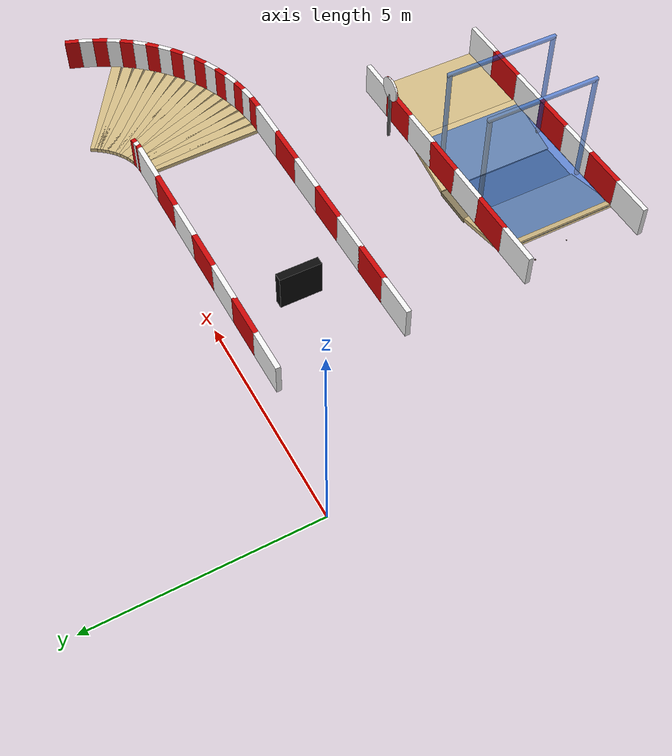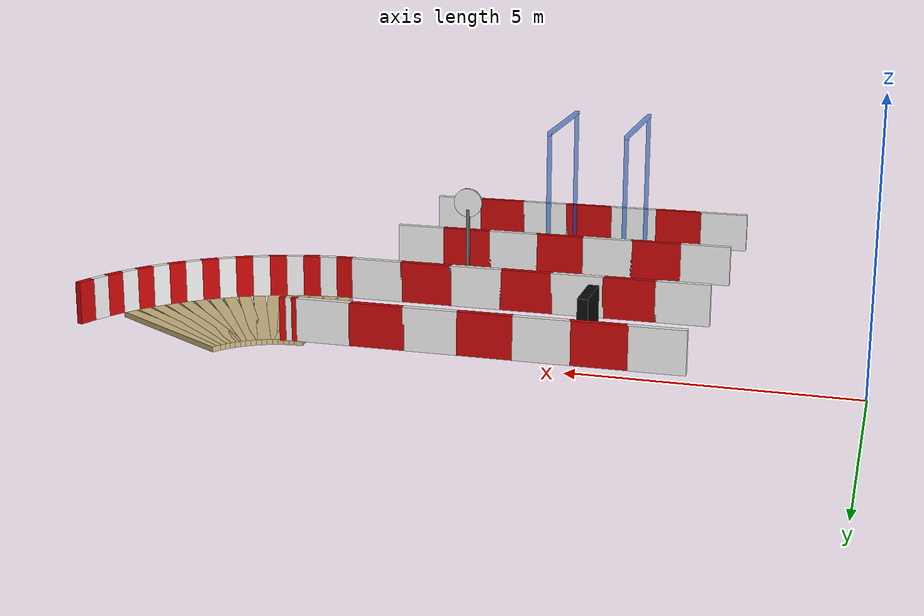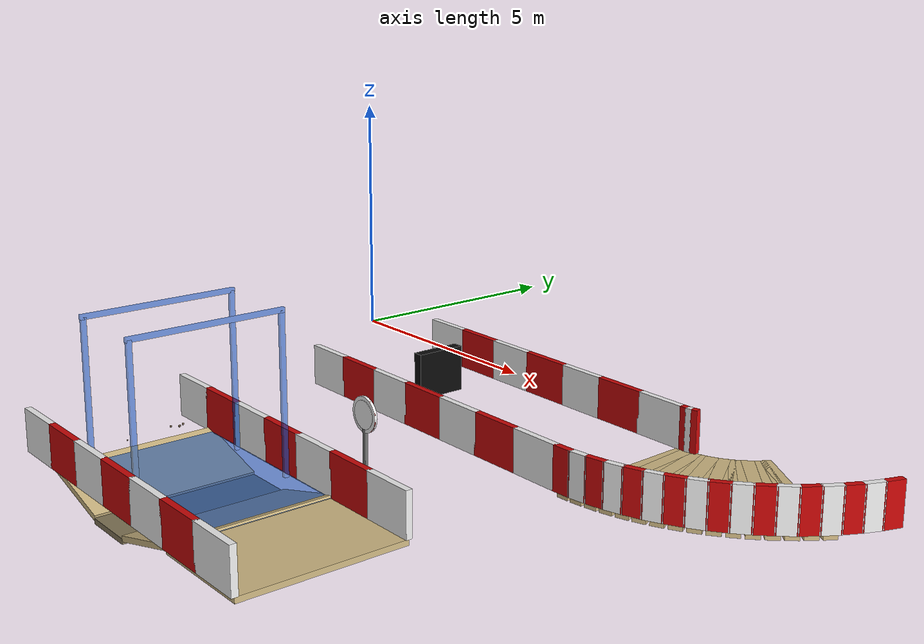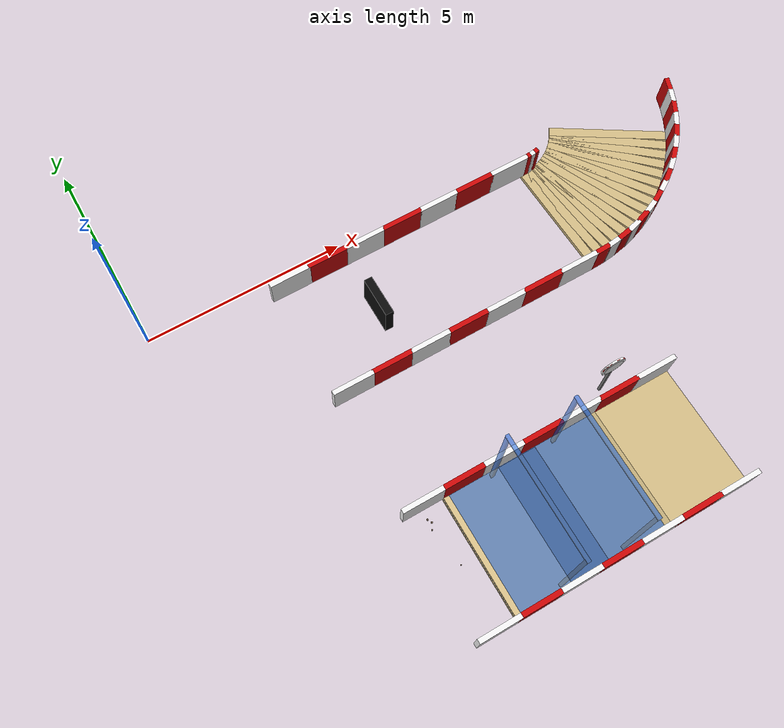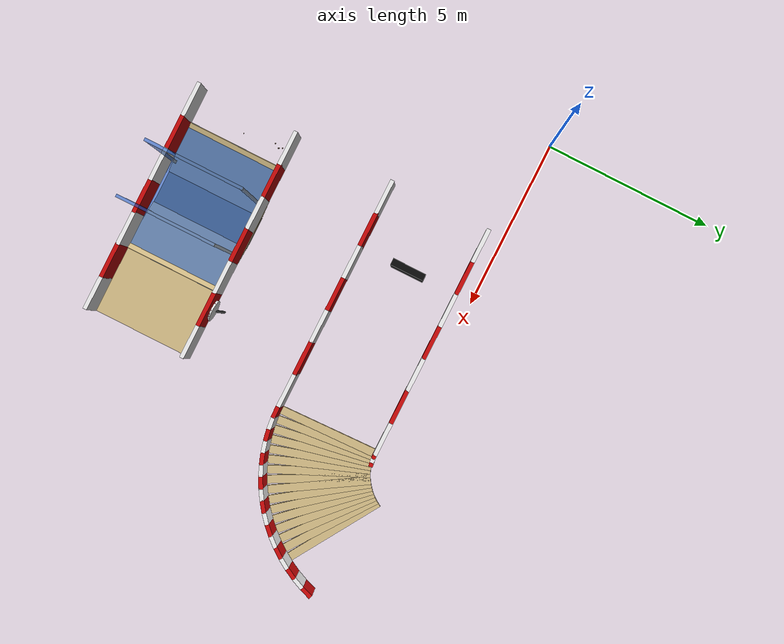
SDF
<sdf version="1.6">
 <world name="evrenos_teknofest_2026">
  <include><uri>model://sun</uri></include>
  <model name="main_course">
   <static>true</static>
   <link name="bottom_start_0">
    <pose>9.0000 -8.0000 -0.0500 0.000000 0.000000 0.000000</pose>
    <collision name="bottom_start_0_collision">
     <geometry><box><size>2.0000 3.0000 0.1000</size></box></geometry>
    </collision>
    <visual name="bottom_start_0_visual">
     <geometry><box><size>2.0000 3.0000 0.1000</size></box></geometry>
     <material><ambient>0.82 0.73 0.52 1</ambient><diffuse>0.82 0.73 0.52 1</diffuse></material>
    </visual>
   </link>
   <link name="water_ramp_down">
    <pose>7.2500 -8.0000 -0.2000 0.000000 -0.260602 0.000000</pose>
    <collision name="water_ramp_down_collision">
     <geometry><box><size>1.5524 3.0000 0.1000</size></box></geometry>
    </collision>
    <visual name="water_ramp_down_visual">
     <geometry><box><size>1.5524 3.0000 0.1000</size></box></geometry>
     <material><ambient>0.82 0.73 0.52 1</ambient><diffuse>0.82 0.73 0.52 1</diffuse></material>
    </visual>
   </link>
   <link name="water_basin_floor">
    <pose>6.0000 -8.0000 -0.4500 0.000000 0.000000 0.000000</pose>
    <collision name="water_basin_floor_collision">
     <geometry><box><size>1.0000 3.0000 0.1000</size></box></geometry>
    </collision>
    <visual name="water_basin_floor_visual">
     <geometry><box><size>1.0000 3.0000 0.1000</size></box></geometry>
     <material><ambient>0.52 0.47 0.35 1</ambient><diffuse>0.52 0.47 0.35 1</diffuse></material>
    </visual>
   </link>
   <link name="water_ramp_up">
    <pose>4.7500 -8.0000 -0.2000 0.000000 0.260602 0.000000</pose>
    <collision name="water_ramp_up_collision">
     <geometry><box><size>1.5524 3.0000 0.1000</size></box></geometry>
    </collision>
    <visual name="water_ramp_up_visual">
     <geometry><box><size>1.5524 3.0000 0.1000</size></box></geometry>
     <material><ambient>0.82 0.73 0.52 1</ambient><diffuse>0.82 0.73 0.52 1</diffuse></material>
    </visual>
   </link>
   <link name="water_surface">
    <pose>6.0000 -8.0000 0.0050 0.000000 0.000000 0.000000</pose>
    <visual name="water_surface_visual">
     <geometry><box><size>4.0000 2.9000 0.0100</size></box></geometry>
     <material><ambient>0.05 0.35 0.85 0.55</ambient><diffuse>0.05 0.35 0.85 0.55</diffuse></material>
    </visual>
   </link>
   <link name="rain_post_5.2_-9.35">
    <pose>5.2000 -9.3500 1.4500 0.000000 0.000000 0.000000</pose>
    <collision name="rain_post_5.2_-9.35_collision">
     <geometry><box><size>0.0800 0.0800 2.9000</size></box></geometry>
    </collision>
    <visual name="rain_post_5.2_-9.35_visual">
     <geometry><box><size>0.0800 0.0800 2.9000</size></box></geometry>
     <material><ambient>0.05 0.35 0.85 0.55</ambient><diffuse>0.05 0.35 0.85 0.55</diffuse></material>
    </visual>
   </link>
   <link name="rain_post_5.2_-6.65">
    <pose>5.2000 -6.6500 1.4500 0.000000 0.000000 0.000000</pose>
    <collision name="rain_post_5.2_-6.65_collision">
     <geometry><box><size>0.0800 0.0800 2.9000</size></box></geometry>
    </collision>
    <visual name="rain_post_5.2_-6.65_visual">
     <geometry><box><size>0.0800 0.0800 2.9000</size></box></geometry>
     <material><ambient>0.05 0.35 0.85 0.55</ambient><diffuse>0.05 0.35 0.85 0.55</diffuse></material>
    </visual>
   </link>
   <link name="rain_post_6.8_-9.35">
    <pose>6.8000 -9.3500 1.4500 0.000000 0.000000 0.000000</pose>
    <collision name="rain_post_6.8_-9.35_collision">
     <geometry><box><size>0.0800 0.0800 2.9000</size></box></geometry>
    </collision>
    <visual name="rain_post_6.8_-9.35_visual">
     <geometry><box><size>0.0800 0.0800 2.9000</size></box></geometry>
     <material><ambient>0.05 0.35 0.85 0.55</ambient><diffuse>0.05 0.35 0.85 0.55</diffuse></material>
    </visual>
   </link>
   <link name="rain_post_6.8_-6.65">
    <pose>6.8000 -6.6500 1.4500 0.000000 0.000000 0.000000</pose>
    <collision name="rain_post_6.8_-6.65_collision">
     <geometry><box><size>0.0800 0.0800 2.9000</size></box></geometry>
    </collision>
    <visual name="rain_post_6.8_-6.65_visual">
     <geometry><box><size>0.0800 0.0800 2.9000</size></box></geometry>
     <material><ambient>0.05 0.35 0.85 0.55</ambient><diffuse>0.05 0.35 0.85 0.55</diffuse></material>
    </visual>
   </link>
   <link name="rain_cross_5.2">
    <pose>5.2000 -8.0000 2.9000 0.000000 0.000000 0.000000</pose>
    <collision name="rain_cross_5.2_collision">
     <geometry><box><size>0.0800 2.8000 0.0800</size></box></geometry>
    </collision>
    <visual name="rain_cross_5.2_visual">
     <geometry><box><size>0.0800 2.8000 0.0800</size></box></geometry>
     <material><ambient>0.05 0.35 0.85 0.55</ambient><diffuse>0.05 0.35 0.85 0.55</diffuse></material>
    </visual>
   </link>
   <link name="rain_cross_6.8">
    <pose>6.8000 -8.0000 2.9000 0.000000 0.000000 0.000000</pose>
    <collision name="rain_cross_6.8_collision">
     <geometry><box><size>0.0800 2.8000 0.0800</size></box></geometry>
    </collision>
    <visual name="rain_cross_6.8_visual">
     <geometry><box><size>0.0800 2.8000 0.0800</size></box></geometry>
     <material><ambient>0.05 0.35 0.85 0.55</ambient><diffuse>0.05 0.35 0.85 0.55</diffuse></material>
    </visual>
   </link>
   <link name="gravel_8">
    <pose>3.5277 -6.8838 0.0124 0 0 0</pose>
    <collision name="gravel_8_collision"><geometry><sphere><radius>0.0225</radius></sphere></geometry></collision>
    <visual name="gravel_8_visual">
     <geometry><sphere><radius>0.0225</radius></sphere></geometry>
     <material><ambient>0.43 0.35 0.27 1</ambient><diffuse>0.43 0.35 0.27 1</diffuse></material>
    </visual>
   </link>
   <link name="gravel_9">
    <pose>3.5988 -7.9647 0.0071 0 0 0</pose>
    <collision name="gravel_9_collision"><geometry><sphere><radius>0.0130</radius></sphere></geometry></collision>
    <visual name="gravel_9_visual">
     <geometry><sphere><radius>0.0130</radius></sphere></geometry>
     <material><ambient>0.43 0.35 0.27 1</ambient><diffuse>0.43 0.35 0.27 1</diffuse></material>
    </visual>
   </link>
   <link name="gravel_35">
    <pose>3.4750 -6.7851 0.0126 0 0 0</pose>
    <collision name="gravel_35_collision">
     <geometry><sphere><radius>0.0230</radius></sphere></geometry>
    </collision>
    <visual name="gravel_35_visual">
     <geometry><sphere><radius>0.0230</radius></sphere></geometry>
     <material><ambient>0.43 0.35 0.27 1</ambient><diffuse>0.43 0.35 0.27 1</diffuse></material>
    </visual>
   </link>
   <link name="gravel_46">
    <pose>3.4498 -7.0224 0.0102 0 0 0</pose>
    <collision name="gravel_46_collision">
     <geometry><sphere><radius>0.0186</radius></sphere></geometry>
    </collision>
    <visual name="gravel_46_visual">
     <geometry><sphere><radius>0.0186</radius></sphere></geometry>
     <material><ambient>0.43 0.35 0.27 1</ambient><diffuse>0.43 0.35 0.27 1</diffuse></material>
    </visual>
   </link>
   <link name="right_turn_road_0">
    <pose>10.0982 -1.9984 -0.0500 0.000000 0.000000 0.032725</pose>
    <collision name="right_turn_road_0_collision">
     <geometry><box><size>0.2356 3.0000 0.1000</size></box></geometry>
    </collision>
    <visual name="right_turn_road_0_visual">
     <geometry><box><size>0.2356 3.0000 0.1000</size></box></geometry>
     <material><ambient>0.82 0.73 0.52 1</ambient><diffuse>0.82 0.73 0.52 1</diffuse></material>
    </visual>
   </link>
   <link name="right_turn_road_1">
    <pose>10.2941 -1.9856 -0.0500 0.000000 0.000000 0.098175</pose>
    <collision name="right_turn_road_1_collision">
     <geometry><box><size>0.2356 3.0000 0.1000</size></box></geometry>
    </collision>
    <visual name="right_turn_road_1_visual">
     <geometry><box><size>0.2356 3.0000 0.1000</size></box></geometry>
     <material><ambient>0.82 0.73 0.52 1</ambient><diffuse>0.82 0.73 0.52 1</diffuse></material>
    </visual>
   </link>
   <link name="right_turn_road_2">
    <pose>10.4887 -1.9599 -0.0500 0.000000 0.000000 0.163625</pose>
    <collision name="right_turn_road_2_collision">
     <geometry><box><size>0.2356 3.0000 0.1000</size></box></geometry>
    </collision>
    <visual name="right_turn_road_2_visual">
     <geometry><box><size>0.2356 3.0000 0.1000</size></box></geometry>
     <material><ambient>0.82 0.73 0.52 1</ambient><diffuse>0.82 0.73 0.52 1</diffuse></material>
    </visual>
   </link>
   <link name="right_turn_road_3">
    <pose>10.6812 -1.9216 -0.0500 0.000000 0.000000 0.229074</pose>
    <collision name="right_turn_road_3_collision">
     <geometry><box><size>0.2356 3.0000 0.1000</size></box></geometry>
    </collision>
    <visual name="right_turn_road_3_visual">
     <geometry><box><size>0.2356 3.0000 0.1000</size></box></geometry>
     <material><ambient>0.82 0.73 0.52 1</ambient><diffuse>0.82 0.73 0.52 1</diffuse></material>
    </visual>
   </link>
   <link name="right_turn_road_4">
    <pose>10.8709 -1.8708 -0.0500 0.000000 0.000000 0.294524</pose>
    <collision name="right_turn_road_4_collision">
     <geometry><box><size>0.2356 3.0000 0.1000</size></box></geometry>
    </collision>
    <visual name="right_turn_road_4_visual">
     <geometry><box><size>0.2356 3.0000 0.1000</size></box></geometry>
     <material><ambient>0.82 0.73 0.52 1</ambient><diffuse>0.82 0.73 0.52 1</diffuse></material>
    </visual>
   </link>
   <link name="right_turn_road_5">
    <pose>11.0568 -1.8077 -0.0500 0.000000 0.000000 0.359974</pose>
    <collision name="right_turn_road_5_collision">
     <geometry><box><size>0.2356 3.0000 0.1000</size></box></geometry>
    </collision>
    <visual name="right_turn_road_5_visual">
     <geometry><box><size>0.2356 3.0000 0.1000</size></box></geometry>
     <material><ambient>0.82 0.73 0.52 1</ambient><diffuse>0.82 0.73 0.52 1</diffuse></material>
    </visual>
   </link>
   <link name="right_turn_road_6">
    <pose>11.2381 -1.7326 -0.0500 0.000000 0.000000 0.425424</pose>
    <collision name="right_turn_road_6_collision">
     <geometry><box><size>0.2356 3.0000 0.1000</size></box></geometry>
    </collision>
    <visual name="right_turn_road_6_visual">
     <geometry><box><size>0.2356 3.0000 0.1000</size></box></geometry>
     <material><ambient>0.82 0.73 0.52 1</ambient><diffuse>0.82 0.73 0.52 1</diffuse></material>
    </visual>
   </link>
   <link name="right_turn_road_7">
    <pose>11.4142 -1.6458 -0.0500 0.000000 0.000000 0.490874</pose>
    <collision name="right_turn_road_7_collision">
     <geometry><box><size>0.2356 3.0000 0.1000</size></box></geometry>
    </collision>
    <visual name="right_turn_road_7_visual">
     <geometry><box><size>0.2356 3.0000 0.1000</size></box></geometry>
     <material><ambient>0.82 0.73 0.52 1</ambient><diffuse>0.82 0.73 0.52 1</diffuse></material>
    </visual>
   </link>
   <link name="right_turn_road_8">
    <pose>11.5842 -1.5476 -0.0500 0.000000 0.000000 0.556324</pose>
    <collision name="right_turn_road_8_collision">
     <geometry><box><size>0.2356 3.0000 0.1000</size></box></geometry>
    </collision>
    <visual name="right_turn_road_8_visual">
     <geometry><box><size>0.2356 3.0000 0.1000</size></box></geometry>
     <material><ambient>0.82 0.73 0.52 1</ambient><diffuse>0.82 0.73 0.52 1</diffuse></material>
    </visual>
   </link>
   <link name="right_turn_road_9">
    <pose>11.7474 -1.4385 -0.0500 0.000000 0.000000 0.621774</pose>
    <collision name="right_turn_road_9_collision">
     <geometry><box><size>0.2356 3.0000 0.1000</size></box></geometry>
    </collision>
    <visual name="right_turn_road_9_visual">
     <geometry><box><size>0.2356 3.0000 0.1000</size></box></geometry>
     <material><ambient>0.82 0.73 0.52 1</ambient><diffuse>0.82 0.73 0.52 1</diffuse></material>
    </visual>
   </link>
   <link name="right_turn_road_10">
    <pose>11.9032 -1.3190 -0.0500 0.000000 0.000000 0.687223</pose>
    <collision name="right_turn_road_10_collision">
     <geometry><box><size>0.2356 3.0000 0.1000</size></box></geometry>
    </collision>
    <visual name="right_turn_road_10_visual">
     <geometry><box><size>0.2356 3.0000 0.1000</size></box></geometry>
     <material><ambient>0.82 0.73 0.52 1</ambient><diffuse>0.82 0.73 0.52 1</diffuse></material>
    </visual>
   </link>
   <link name="right_turn_road_11">
    <pose>12.0508 -1.1896 -0.0500 0.000000 0.000000 0.752673</pose>
    <collision name="right_turn_road_11_collision">
     <geometry><box><size>0.2356 3.0000 0.1000</size></box></geometry>
    </collision>
    <visual name="right_turn_road_11_visual">
     <geometry><box><size>0.2356 3.0000 0.1000</size></box></geometry>
     <material><ambient>0.82 0.73 0.52 1</ambient><diffuse>0.82 0.73 0.52 1</diffuse></material>
    </visual>
   </link>
   <link name="right_turn_road_12">
    <pose>12.1896 -1.0508 -0.0500 0.000000 0.000000 0.818123</pose>
    <collision name="right_turn_road_12_collision">
     <geometry><box><size>0.2356 3.0000 0.1000</size></box></geometry>
    </collision>
    <visual name="right_turn_road_12_visual">
     <geometry><box><size>0.2356 3.0000 0.1000</size></box></geometry>
     <material><ambient>0.82 0.73 0.52 1</ambient><diffuse>0.82 0.73 0.52 1</diffuse></material>
    </visual>
   </link>
   <link name="right_turn_road_13">
    <pose>12.3190 -0.9032 -0.0500 0.000000 0.000000 0.883573</pose>
    <collision name="right_turn_road_13_collision">
     <geometry><box><size>0.2356 3.0000 0.1000</size></box></geometry>
    </collision>
    <visual name="right_turn_road_13_visual">
     <geometry><box><size>0.2356 3.0000 0.1000</size></box></geometry>
     <material><ambient>0.82 0.73 0.52 1</ambient><diffuse>0.82 0.73 0.52 1</diffuse></material>
    </visual>
   </link>
   <link name="right_turn_road_14">
    <pose>12.4385 -0.7474 -0.0500 0.000000 0.000000 0.949023</pose>
    <collision name="right_turn_road_14_collision">
     <geometry><box><size>0.2356 3.0000 0.1000</size></box></geometry>
    </collision>
    <visual name="right_turn_road_14_visual">
     <geometry><box><size>0.2356 3.0000 0.1000</size></box></geometry>
     <material><ambient>0.82 0.73 0.52 1</ambient><diffuse>0.82 0.73 0.52 1</diffuse></material>
    </visual>
   </link>
   <link name="right_turn_road_15">
    <pose>12.5476 -0.5842 -0.0500 0.000000 0.000000 1.014473</pose>
    <collision name="right_turn_road_15_collision">
     <geometry><box><size>0.2356 3.0000 0.1000</size></box></geometry>
    </collision>
    <visual name="right_turn_road_15_visual">
     <geometry><box><size>0.2356 3.0000 0.1000</size></box></geometry>
     <material><ambient>0.82 0.73 0.52 1</ambient><diffuse>0.82 0.73 0.52 1</diffuse></material>
    </visual>
   </link>
   <link name="bottom_bar_-1_13">
    <pose>3.5000 -9.5000 0.4000 0.000000 0.000000 0.000000</pose>
    <collision name="bottom_bar_-1_13_collision">
     <geometry><box><size>1.0300 0.1200 0.8000</size></box></geometry>
    </collision>
    <visual name="bottom_bar_-1_13_visual">
     <geometry><box><size>1.0300 0.1200 0.8000</size></box></geometry>
     <material><ambient>0.95 0.95 0.95 1</ambient><diffuse>0.95 0.95 0.95 1</diffuse></material>
    </visual>
   </link>
   <link name="bottom_bar_-1_14">
    <pose>4.5000 -9.5000 0.4000 0.000000 0.000000 0.000000</pose>
    <collision name="bottom_bar_-1_14_collision">
     <geometry><box><size>1.0300 0.1200 0.8000</size></box></geometry>
    </collision>
    <visual name="bottom_bar_-1_14_visual">
     <geometry><box><size>1.0300 0.1200 0.8000</size></box></geometry>
     <material><ambient>0.8 0.03 0.03 1</ambient><diffuse>0.8 0.03 0.03 1</diffuse></material>
    </visual>
   </link>
   <link name="bottom_bar_-1_15">
    <pose>5.5000 -9.5000 0.4000 0.000000 0.000000 0.000000</pose>
    <collision name="bottom_bar_-1_15_collision">
     <geometry><box><size>1.0300 0.1200 0.8000</size></box></geometry>
    </collision>
    <visual name="bottom_bar_-1_15_visual">
     <geometry><box><size>1.0300 0.1200 0.8000</size></box></geometry>
     <material><ambient>0.95 0.95 0.95 1</ambient><diffuse>0.95 0.95 0.95 1</diffuse></material>
    </visual>
   </link>
   <link name="bottom_bar_-1_16">
    <pose>6.5000 -9.5000 0.4000 0.000000 0.000000 0.000000</pose>
    <collision name="bottom_bar_-1_16_collision">
     <geometry><box><size>1.0300 0.1200 0.8000</size></box></geometry>
    </collision>
    <visual name="bottom_bar_-1_16_visual">
     <geometry><box><size>1.0300 0.1200 0.8000</size></box></geometry>
     <material><ambient>0.8 0.03 0.03 1</ambient><diffuse>0.8 0.03 0.03 1</diffuse></material>
    </visual>
   </link>
   <link name="bottom_bar_-1_17">
    <pose>7.5000 -9.5000 0.4000 0.000000 0.000000 0.000000</pose>
    <collision name="bottom_bar_-1_17_collision">
     <geometry><box><size>1.0300 0.1200 0.8000</size></box></geometry>
    </collision>
    <visual name="bottom_bar_-1_17_visual">
     <geometry><box><size>1.0300 0.1200 0.8000</size></box></geometry>
     <material><ambient>0.95 0.95 0.95 1</ambient><diffuse>0.95 0.95 0.95 1</diffuse></material>
    </visual>
   </link>
   <link name="bottom_bar_-1_18">
    <pose>8.5000 -9.5000 0.4000 0.000000 0.000000 0.000000</pose>
    <collision name="bottom_bar_-1_18_collision">
     <geometry><box><size>1.0300 0.1200 0.8000</size></box></geometry>
    </collision>
    <visual name="bottom_bar_-1_18_visual">
     <geometry><box><size>1.0300 0.1200 0.8000</size></box></geometry>
     <material><ambient>0.8 0.03 0.03 1</ambient><diffuse>0.8 0.03 0.03 1</diffuse></material>
    </visual>
   </link>
   <link name="bottom_bar_-1_19">
    <pose>9.5000 -9.5000 0.4000 0.000000 0.000000 0.000000</pose>
    <collision name="bottom_bar_-1_19_collision">
     <geometry><box><size>1.0300 0.1200 0.8000</size></box></geometry>
    </collision>
    <visual name="bottom_bar_-1_19_visual">
     <geometry><box><size>1.0300 0.1200 0.8000</size></box></geometry>
     <material><ambient>0.95 0.95 0.95 1</ambient><diffuse>0.95 0.95 0.95 1</diffuse></material>
    </visual>
   </link>
   <link name="bottom_bar_1_13">
    <pose>3.5000 -6.5000 0.4000 0.000000 0.000000 0.000000</pose>
    <collision name="bottom_bar_1_13_collision">
     <geometry><box><size>1.0300 0.1200 0.8000</size></box></geometry>
    </collision>
    <visual name="bottom_bar_1_13_visual">
     <geometry><box><size>1.0300 0.1200 0.8000</size></box></geometry>
     <material><ambient>0.95 0.95 0.95 1</ambient><diffuse>0.95 0.95 0.95 1</diffuse></material>
    </visual>
   </link>
   <link name="bottom_bar_1_14">
    <pose>4.5000 -6.5000 0.4000 0.000000 0.000000 0.000000</pose>
    <collision name="bottom_bar_1_14_collision">
     <geometry><box><size>1.0300 0.1200 0.8000</size></box></geometry>
    </collision>
    <visual name="bottom_bar_1_14_visual">
     <geometry><box><size>1.0300 0.1200 0.8000</size></box></geometry>
     <material><ambient>0.8 0.03 0.03 1</ambient><diffuse>0.8 0.03 0.03 1</diffuse></material>
    </visual>
   </link>
   <link name="bottom_bar_1_15">
    <pose>5.5000 -6.5000 0.4000 0.000000 0.000000 0.000000</pose>
    <collision name="bottom_bar_1_15_collision">
     <geometry><box><size>1.0300 0.1200 0.8000</size></box></geometry>
    </collision>
    <visual name="bottom_bar_1_15_visual">
     <geometry><box><size>1.0300 0.1200 0.8000</size></box></geometry>
     <material><ambient>0.95 0.95 0.95 1</ambient><diffuse>0.95 0.95 0.95 1</diffuse></material>
    </visual>
   </link>
   <link name="bottom_bar_1_16">
    <pose>6.5000 -6.5000 0.4000 0.000000 0.000000 0.000000</pose>
    <collision name="bottom_bar_1_16_collision">
     <geometry><box><size>1.0300 0.1200 0.8000</size></box></geometry>
    </collision>
    <visual name="bottom_bar_1_16_visual">
     <geometry><box><size>1.0300 0.1200 0.8000</size></box></geometry>
     <material><ambient>0.8 0.03 0.03 1</ambient><diffuse>0.8 0.03 0.03 1</diffuse></material>
    </visual>
   </link>
   <link name="bottom_bar_1_17">
    <pose>7.5000 -6.5000 0.4000 0.000000 0.000000 0.000000</pose>
    <collision name="bottom_bar_1_17_collision">
     <geometry><box><size>1.0300 0.1200 0.8000</size></box></geometry>
    </collision>
    <visual name="bottom_bar_1_17_visual">
     <geometry><box><size>1.0300 0.1200 0.8000</size></box></geometry>
     <material><ambient>0.95 0.95 0.95 1</ambient><diffuse>0.95 0.95 0.95 1</diffuse></material>
    </visual>
   </link>
   <link name="bottom_bar_1_18">
    <pose>8.5000 -6.5000 0.4000 0.000000 0.000000 0.000000</pose>
    <collision name="bottom_bar_1_18_collision">
     <geometry><box><size>1.0300 0.1200 0.8000</size></box></geometry>
    </collision>
    <visual name="bottom_bar_1_18_visual">
     <geometry><box><size>1.0300 0.1200 0.8000</size></box></geometry>
     <material><ambient>0.8 0.03 0.03 1</ambient><diffuse>0.8 0.03 0.03 1</diffuse></material>
    </visual>
   </link>
   <link name="bottom_bar_1_19">
    <pose>9.5000 -6.5000 0.4000 0.000000 0.000000 0.000000</pose>
    <collision name="bottom_bar_1_19_collision">
     <geometry><box><size>1.0300 0.1200 0.8000</size></box></geometry>
    </collision>
    <visual name="bottom_bar_1_19_visual">
     <geometry><box><size>1.0300 0.1200 0.8000</size></box></geometry>
     <material><ambient>0.95 0.95 0.95 1</ambient><diffuse>0.95 0.95 0.95 1</diffuse></material>
    </visual>
   </link>
   <link name="middle_bar_-1_13">
    <pose>3.5000 -3.5000 0.4000 0.000000 0.000000 0.000000</pose>
    <collision name="middle_bar_-1_13_collision">
     <geometry><box><size>1.0300 0.1200 0.8000</size></box></geometry>
    </collision>
    <visual name="middle_bar_-1_13_visual">
     <geometry><box><size>1.0300 0.1200 0.8000</size></box></geometry>
     <material><ambient>0.95 0.95 0.95 1</ambient><diffuse>0.95 0.95 0.95 1</diffuse></material>
    </visual>
   </link>
   <link name="middle_bar_-1_14">
    <pose>4.5000 -3.5000 0.4000 0.000000 0.000000 0.000000</pose>
    <collision name="middle_bar_-1_14_collision">
     <geometry><box><size>1.0300 0.1200 0.8000</size></box></geometry>
    </collision>
    <visual name="middle_bar_-1_14_visual">
     <geometry><box><size>1.0300 0.1200 0.8000</size></box></geometry>
     <material><ambient>0.8 0.03 0.03 1</ambient><diffuse>0.8 0.03 0.03 1</diffuse></material>
    </visual>
   </link>
   <link name="middle_bar_-1_15">
    <pose>5.5000 -3.5000 0.4000 0.000000 0.000000 0.000000</pose>
    <collision name="middle_bar_-1_15_collision">
     <geometry><box><size>1.0300 0.1200 0.8000</size></box></geometry>
    </collision>
    <visual name="middle_bar_-1_15_visual">
     <geometry><box><size>1.0300 0.1200 0.8000</size></box></geometry>
     <material><ambient>0.95 0.95 0.95 1</ambient><diffuse>0.95 0.95 0.95 1</diffuse></material>
    </visual>
   </link>
   <link name="middle_bar_-1_16">
    <pose>6.5000 -3.5000 0.4000 0.000000 0.000000 0.000000</pose>
    <collision name="middle_bar_-1_16_collision">
     <geometry><box><size>1.0300 0.1200 0.8000</size></box></geometry>
    </collision>
    <visual name="middle_bar_-1_16_visual">
     <geometry><box><size>1.0300 0.1200 0.8000</size></box></geometry>
     <material><ambient>0.8 0.03 0.03 1</ambient><diffuse>0.8 0.03 0.03 1</diffuse></material>
    </visual>
   </link>
   <link name="middle_bar_-1_17">
    <pose>7.5000 -3.5000 0.4000 0.000000 0.000000 0.000000</pose>
    <collision name="middle_bar_-1_17_collision">
     <geometry><box><size>1.0300 0.1200 0.8000</size></box></geometry>
    </collision>
    <visual name="middle_bar_-1_17_visual">
     <geometry><box><size>1.0300 0.1200 0.8000</size></box></geometry>
     <material><ambient>0.95 0.95 0.95 1</ambient><diffuse>0.95 0.95 0.95 1</diffuse></material>
    </visual>
   </link>
   <link name="middle_bar_-1_18">
    <pose>8.5000 -3.5000 0.4000 0.000000 0.000000 0.000000</pose>
    <collision name="middle_bar_-1_18_collision">
     <geometry><box><size>1.0300 0.1200 0.8000</size></box></geometry>
    </collision>
    <visual name="middle_bar_-1_18_visual">
     <geometry><box><size>1.0300 0.1200 0.8000</size></box></geometry>
     <material><ambient>0.8 0.03 0.03 1</ambient><diffuse>0.8 0.03 0.03 1</diffuse></material>
    </visual>
   </link>
   <link name="middle_bar_-1_19">
    <pose>9.5000 -3.5000 0.4000 0.000000 0.000000 0.000000</pose>
    <collision name="middle_bar_-1_19_collision">
     <geometry><box><size>1.0300 0.1200 0.8000</size></box></geometry>
    </collision>
    <visual name="middle_bar_-1_19_visual">
     <geometry><box><size>1.0300 0.1200 0.8000</size></box></geometry>
     <material><ambient>0.95 0.95 0.95 1</ambient><diffuse>0.95 0.95 0.95 1</diffuse></material>
    </visual>
   </link>
   <link name="middle_bar_1_13">
    <pose>3.5000 -0.5000 0.4000 0.000000 0.000000 0.000000</pose>
    <collision name="middle_bar_1_13_collision">
     <geometry><box><size>1.0300 0.1200 0.8000</size></box></geometry>
    </collision>
    <visual name="middle_bar_1_13_visual">
     <geometry><box><size>1.0300 0.1200 0.8000</size></box></geometry>
     <material><ambient>0.95 0.95 0.95 1</ambient><diffuse>0.95 0.95 0.95 1</diffuse></material>
    </visual>
   </link>
   <link name="middle_bar_1_14">
    <pose>4.5000 -0.5000 0.4000 0.000000 0.000000 0.000000</pose>
    <collision name="middle_bar_1_14_collision">
     <geometry><box><size>1.0300 0.1200 0.8000</size></box></geometry>
    </collision>
    <visual name="middle_bar_1_14_visual">
     <geometry><box><size>1.0300 0.1200 0.8000</size></box></geometry>
     <material><ambient>0.8 0.03 0.03 1</ambient><diffuse>0.8 0.03 0.03 1</diffuse></material>
    </visual>
   </link>
   <link name="middle_bar_1_15">
    <pose>5.5000 -0.5000 0.4000 0.000000 0.000000 0.000000</pose>
    <collision name="middle_bar_1_15_collision">
     <geometry><box><size>1.0300 0.1200 0.8000</size></box></geometry>
    </collision>
    <visual name="middle_bar_1_15_visual">
     <geometry><box><size>1.0300 0.1200 0.8000</size></box></geometry>
     <material><ambient>0.95 0.95 0.95 1</ambient><diffuse>0.95 0.95 0.95 1</diffuse></material>
    </visual>
   </link>
   <link name="middle_bar_1_16">
    <pose>6.5000 -0.5000 0.4000 0.000000 0.000000 0.000000</pose>
    <collision name="middle_bar_1_16_collision">
     <geometry><box><size>1.0300 0.1200 0.8000</size></box></geometry>
    </collision>
    <visual name="middle_bar_1_16_visual">
     <geometry><box><size>1.0300 0.1200 0.8000</size></box></geometry>
     <material><ambient>0.8 0.03 0.03 1</ambient><diffuse>0.8 0.03 0.03 1</diffuse></material>
    </visual>
   </link>
   <link name="middle_bar_1_17">
    <pose>7.5000 -0.5000 0.4000 0.000000 0.000000 0.000000</pose>
    <collision name="middle_bar_1_17_collision">
     <geometry><box><size>1.0300 0.1200 0.8000</size></box></geometry>
    </collision>
    <visual name="middle_bar_1_17_visual">
     <geometry><box><size>1.0300 0.1200 0.8000</size></box></geometry>
     <material><ambient>0.95 0.95 0.95 1</ambient><diffuse>0.95 0.95 0.95 1</diffuse></material>
    </visual>
   </link>
   <link name="middle_bar_1_18">
    <pose>8.5000 -0.5000 0.4000 0.000000 0.000000 0.000000</pose>
    <collision name="middle_bar_1_18_collision">
     <geometry><box><size>1.0300 0.1200 0.8000</size></box></geometry>
    </collision>
    <visual name="middle_bar_1_18_visual">
     <geometry><box><size>1.0300 0.1200 0.8000</size></box></geometry>
     <material><ambient>0.8 0.03 0.03 1</ambient><diffuse>0.8 0.03 0.03 1</diffuse></material>
    </visual>
   </link>
   <link name="middle_bar_1_19">
    <pose>9.5000 -0.5000 0.4000 0.000000 0.000000 0.000000</pose>
    <collision name="middle_bar_1_19_collision">
     <geometry><box><size>1.0300 0.1200 0.8000</size></box></geometry>
    </collision>
    <visual name="middle_bar_1_19_visual">
     <geometry><box><size>1.0300 0.1200 0.8000</size></box></geometry>
     <material><ambient>0.95 0.95 0.95 1</ambient><diffuse>0.95 0.95 0.95 1</diffuse></material>
    </visual>
   </link>
   <link name="right_turn_bar_0_0">
    <pose>10.0561 -0.4990 0.4000 0.000000 0.000000 0.037400</pose>
    <collision name="right_turn_bar_0_0_collision">
     <geometry><box><size>0.1234 0.1200 0.8000</size></box></geometry>
    </collision>
    <visual name="right_turn_bar_0_0_visual">
     <geometry><box><size>0.1234 0.1200 0.8000</size></box></geometry>
     <material><ambient>0.8 0.03 0.03 1</ambient><diffuse>0.8 0.03 0.03 1</diffuse></material>
    </visual>
   </link>
   <link name="right_turn_bar_0_1">
    <pose>10.1679 -0.4906 0.4000 0.000000 0.000000 0.112200</pose>
    <collision name="right_turn_bar_0_1_collision">
     <geometry><box><size>0.1234 0.1200 0.8000</size></box></geometry>
    </collision>
    <visual name="right_turn_bar_0_1_visual">
     <geometry><box><size>0.1234 0.1200 0.8000</size></box></geometry>
     <material><ambient>0.95 0.95 0.95 1</ambient><diffuse>0.95 0.95 0.95 1</diffuse></material>
    </visual>
   </link>
   <link name="right_turn_bar_0_2">
    <pose>10.2789 -0.4738 0.4000 0.000000 0.000000 0.187000</pose>
    <collision name="right_turn_bar_0_2_collision">
     <geometry><box><size>0.1234 0.1200 0.8000</size></box></geometry>
    </collision>
    <visual name="right_turn_bar_0_2_visual">
     <geometry><box><size>0.1234 0.1200 0.8000</size></box></geometry>
     <material><ambient>0.8 0.03 0.03 1</ambient><diffuse>0.8 0.03 0.03 1</diffuse></material>
    </visual>
   </link>
   <link name="right_turn_bar_1_0">
    <pose>10.1683 -3.4969 0.4000 0.000000 0.000000 0.037400</pose>
    <collision name="right_turn_bar_1_0_collision">
     <geometry><box><size>0.3703 0.1200 0.8000</size></box></geometry>
    </collision>
    <visual name="right_turn_bar_1_0_visual">
     <geometry><box><size>0.3703 0.1200 0.8000</size></box></geometry>
     <material><ambient>0.8 0.03 0.03 1</ambient><diffuse>0.8 0.03 0.03 1</diffuse></material>
    </visual>
   </link>
   <link name="right_turn_bar_1_1">
    <pose>10.5038 -3.4717 0.4000 0.000000 0.000000 0.112200</pose>
    <collision name="right_turn_bar_1_1_collision">
     <geometry><box><size>0.3703 0.1200 0.8000</size></box></geometry>
    </collision>
    <visual name="right_turn_bar_1_1_visual">
     <geometry><box><size>0.3703 0.1200 0.8000</size></box></geometry>
     <material><ambient>0.95 0.95 0.95 1</ambient><diffuse>0.95 0.95 0.95 1</diffuse></material>
    </visual>
   </link>
   <link name="right_turn_bar_1_2">
    <pose>10.8366 -3.4215 0.4000 0.000000 0.000000 0.187000</pose>
    <collision name="right_turn_bar_1_2_collision">
     <geometry><box><size>0.3703 0.1200 0.8000</size></box></geometry>
    </collision>
    <visual name="right_turn_bar_1_2_visual">
     <geometry><box><size>0.3703 0.1200 0.8000</size></box></geometry>
     <material><ambient>0.8 0.03 0.03 1</ambient><diffuse>0.8 0.03 0.03 1</diffuse></material>
    </visual>
   </link>
   <link name="right_turn_bar_1_3">
    <pose>11.1647 -3.3467 0.4000 0.000000 0.000000 0.261799</pose>
    <collision name="right_turn_bar_1_3_collision">
     <geometry><box><size>0.3703 0.1200 0.8000</size></box></geometry>
    </collision>
    <visual name="right_turn_bar_1_3_visual">
     <geometry><box><size>0.3703 0.1200 0.8000</size></box></geometry>
     <material><ambient>0.95 0.95 0.95 1</ambient><diffuse>0.95 0.95 0.95 1</diffuse></material>
    </visual>
   </link>
   <link name="right_turn_bar_1_4">
    <pose>11.4863 -3.2475 0.4000 0.000000 0.000000 0.336599</pose>
    <collision name="right_turn_bar_1_4_collision">
     <geometry><box><size>0.3703 0.1200 0.8000</size></box></geometry>
    </collision>
    <visual name="right_turn_bar_1_4_visual">
     <geometry><box><size>0.3703 0.1200 0.8000</size></box></geometry>
     <material><ambient>0.8 0.03 0.03 1</ambient><diffuse>0.8 0.03 0.03 1</diffuse></material>
    </visual>
   </link>
   <link name="right_turn_bar_1_5">
    <pose>11.7995 -3.1245 0.4000 0.000000 0.000000 0.411399</pose>
    <collision name="right_turn_bar_1_5_collision">
     <geometry><box><size>0.3703 0.1200 0.8000</size></box></geometry>
    </collision>
    <visual name="right_turn_bar_1_5_visual">
     <geometry><box><size>0.3703 0.1200 0.8000</size></box></geometry>
     <material><ambient>0.95 0.95 0.95 1</ambient><diffuse>0.95 0.95 0.95 1</diffuse></material>
    </visual>
   </link>
   <link name="right_turn_bar_1_6">
    <pose>12.1027 -2.9785 0.4000 0.000000 0.000000 0.486199</pose>
    <collision name="right_turn_bar_1_6_collision">
     <geometry><box><size>0.3703 0.1200 0.8000</size></box></geometry>
    </collision>
    <visual name="right_turn_bar_1_6_visual">
     <geometry><box><size>0.3703 0.1200 0.8000</size></box></geometry>
     <material><ambient>0.8 0.03 0.03 1</ambient><diffuse>0.8 0.03 0.03 1</diffuse></material>
    </visual>
   </link>
   <link name="right_turn_bar_1_7">
    <pose>12.3941 -2.8103 0.4000 0.000000 0.000000 0.560999</pose>
    <collision name="right_turn_bar_1_7_collision">
     <geometry><box><size>0.3703 0.1200 0.8000</size></box></geometry>
    </collision>
    <visual name="right_turn_bar_1_7_visual">
     <geometry><box><size>0.3703 0.1200 0.8000</size></box></geometry>
     <material><ambient>0.95 0.95 0.95 1</ambient><diffuse>0.95 0.95 0.95 1</diffuse></material>
    </visual>
   </link>
   <link name="right_turn_bar_1_8">
    <pose>12.6722 -2.6207 0.4000 0.000000 0.000000 0.635799</pose>
    <collision name="right_turn_bar_1_8_collision">
     <geometry><box><size>0.3703 0.1200 0.8000</size></box></geometry>
    </collision>
    <visual name="right_turn_bar_1_8_visual">
     <geometry><box><size>0.3703 0.1200 0.8000</size></box></geometry>
     <material><ambient>0.8 0.03 0.03 1</ambient><diffuse>0.8 0.03 0.03 1</diffuse></material>
    </visual>
   </link>
   <link name="right_turn_bar_1_9">
    <pose>12.9353 -2.4109 0.4000 0.000000 0.000000 0.710598</pose>
    <collision name="right_turn_bar_1_9_collision">
     <geometry><box><size>0.3703 0.1200 0.8000</size></box></geometry>
    </collision>
    <visual name="right_turn_bar_1_9_visual">
     <geometry><box><size>0.3703 0.1200 0.8000</size></box></geometry>
     <material><ambient>0.95 0.95 0.95 1</ambient><diffuse>0.95 0.95 0.95 1</diffuse></material>
    </visual>
   </link>
   <link name="right_turn_bar_1_10">
    <pose>13.1820 -2.1820 0.4000 0.000000 0.000000 0.785398</pose>
    <collision name="right_turn_bar_1_10_collision">
     <geometry><box><size>0.3703 0.1200 0.8000</size></box></geometry>
    </collision>
    <visual name="right_turn_bar_1_10_visual">
     <geometry><box><size>0.3703 0.1200 0.8000</size></box></geometry>
     <material><ambient>0.8 0.03 0.03 1</ambient><diffuse>0.8 0.03 0.03 1</diffuse></material>
    </visual>
   </link>
   <link name="right_turn_bar_1_11">
    <pose>13.4109 -1.9353 0.4000 0.000000 0.000000 0.860198</pose>
    <collision name="right_turn_bar_1_11_collision">
     <geometry><box><size>0.3703 0.1200 0.8000</size></box></geometry>
    </collision>
    <visual name="right_turn_bar_1_11_visual">
     <geometry><box><size>0.3703 0.1200 0.8000</size></box></geometry>
     <material><ambient>0.95 0.95 0.95 1</ambient><diffuse>0.95 0.95 0.95 1</diffuse></material>
    </visual>
   </link>
   <link name="right_turn_bar_1_12">
    <pose>13.6207 -1.6722 0.4000 0.000000 0.000000 0.934998</pose>
    <collision name="right_turn_bar_1_12_collision">
     <geometry><box><size>0.3703 0.1200 0.8000</size></box></geometry>
    </collision>
    <visual name="right_turn_bar_1_12_visual">
     <geometry><box><size>0.3703 0.1200 0.8000</size></box></geometry>
     <material><ambient>0.8 0.03 0.03 1</ambient><diffuse>0.8 0.03 0.03 1</diffuse></material>
    </visual>
   </link>
   <link name="right_turn_bar_1_13">
    <pose>13.8103 -1.3941 0.4000 0.000000 0.000000 1.009798</pose>
    <collision name="right_turn_bar_1_13_collision">
     <geometry><box><size>0.3703 0.1200 0.8000</size></box></geometry>
    </collision>
    <visual name="right_turn_bar_1_13_visual">
     <geometry><box><size>0.3703 0.1200 0.8000</size></box></geometry>
     <material><ambient>0.95 0.95 0.95 1</ambient><diffuse>0.95 0.95 0.95 1</diffuse></material>
    </visual>
   </link>
   <link name="right_turn_bar_1_14">
    <pose>13.9785 -1.1027 0.4000 0.000000 0.000000 1.084597</pose>
    <collision name="right_turn_bar_1_14_collision">
     <geometry><box><size>0.3703 0.1200 0.8000</size></box></geometry>
    </collision>
    <visual name="right_turn_bar_1_14_visual">
     <geometry><box><size>0.3703 0.1200 0.8000</size></box></geometry>
     <material><ambient>0.8 0.03 0.03 1</ambient><diffuse>0.8 0.03 0.03 1</diffuse></material>
    </visual>
   </link>
   <link name="right_turn_bar_1_15">
    <pose>14.1245 -0.7995 0.4000 0.000000 0.000000 1.159397</pose>
    <collision name="right_turn_bar_1_15_collision">
     <geometry><box><size>0.3703 0.1200 0.8000</size></box></geometry>
    </collision>
    <visual name="right_turn_bar_1_15_visual">
     <geometry><box><size>0.3703 0.1200 0.8000</size></box></geometry>
     <material><ambient>0.95 0.95 0.95 1</ambient><diffuse>0.95 0.95 0.95 1</diffuse></material>
    </visual>
   </link>
   <link name="right_turn_bar_1_16">
    <pose>14.2475 -0.4863 0.4000 0.000000 0.000000 1.234197</pose>
    <collision name="right_turn_bar_1_16_collision">
     <geometry><box><size>0.3703 0.1200 0.8000</size></box></geometry>
    </collision>
    <visual name="right_turn_bar_1_16_visual">
     <geometry><box><size>0.3703 0.1200 0.8000</size></box></geometry>
     <material><ambient>0.8 0.03 0.03 1</ambient><diffuse>0.8 0.03 0.03 1</diffuse></material>
    </visual>
   </link>
   <link name="stage1_post">
    <pose>8.4000 -6.1500 0.6500 0.000000 0.000000 0.000000</pose>
    <collision name="stage1_post_collision">
     <geometry><box><size>0.0600 0.0600 1.3000</size></box></geometry>
    </collision>
    <visual name="stage1_post_visual">
     <geometry><box><size>0.0600 0.0600 1.3000</size></box></geometry>
     <material><ambient>0.45 0.45 0.45 1</ambient><diffuse>0.45 0.45 0.45 1</diffuse></material>
    </visual>
   </link>
   <link name="stage1_disc">
    <pose>8.4000 -6.1500 1.4500 1.570796 0.000000 0.000000</pose>
    <visual name="stage1_disc_visual">
     <geometry><cylinder><radius>0.3000</radius><length>0.0500</length></cylinder></geometry>
     <material><ambient>0.95 0.95 0.95 1</ambient><diffuse>0.95 0.95 0.95 1</diffuse></material>
    </visual>
   </link>
   <link name="stage1_redring">
    <pose>8.4000 -6.1620 1.4500 1.570796 0.000000 0.000000</pose>
    <visual name="stage1_redring_visual">
     <geometry><cylinder><radius>0.3000</radius><length>0.0180</length></cylinder></geometry>
     <material><ambient>0.8 0.03 0.03 1</ambient><diffuse>0.8 0.03 0.03 1</diffuse></material>
    </visual>
   </link>
   <link name="stage1_inner">
    <pose>8.4000 -6.1740 1.4500 1.570796 0.000000 0.000000</pose>
    <visual name="stage1_inner_visual">
     <geometry><cylinder><radius>0.2400</radius><length>0.0200</length></cylinder></geometry>
     <material><ambient>0.95 0.95 0.95 1</ambient><diffuse>0.95 0.95 0.95 1</diffuse></material>
    </visual>
   </link>
  </model>
  <model name="sliding_obstacle">
   <static>false</static>
   <pose>5.0 -2.0 0.45 0 0 0</pose>
   <link name="barrier_link">
    <gravity>false</gravity>
    <kinematic>true</kinematic>
    <inertial>
     <mass>20.0</mass>
     <inertia><ixx>1</ixx><iyy>1</iyy><izz>1</izz><ixy>0</ixy><ixz>0</ixz><iyz>0</iyz></inertia>
    </inertial>
    <collision name="collision"><geometry><box><size>0.20 1.00 0.90</size></box></geometry></collision>
    <visual name="visual">
     <geometry><box><size>0.20 1.00 0.90</size></box></geometry>
     <material><ambient>0.04 0.04 0.04 1</ambient><diffuse>0.04 0.04 0.04 1</diffuse></material>
    </visual>
   </link>
  </model>
 </world>
</sdf>
